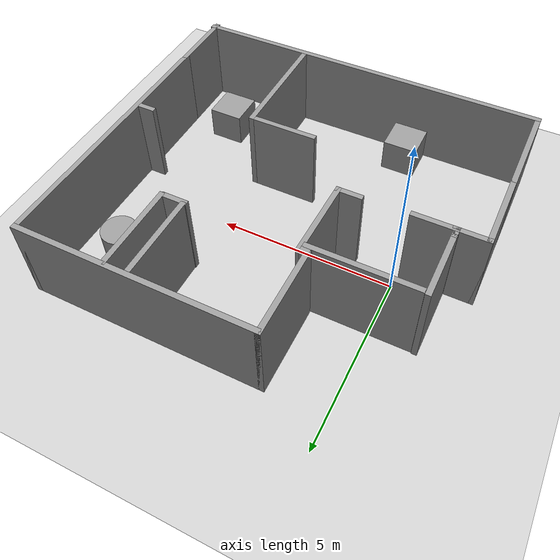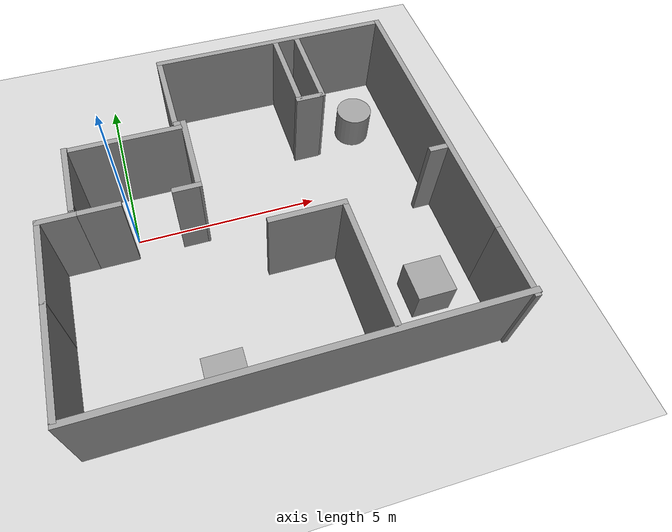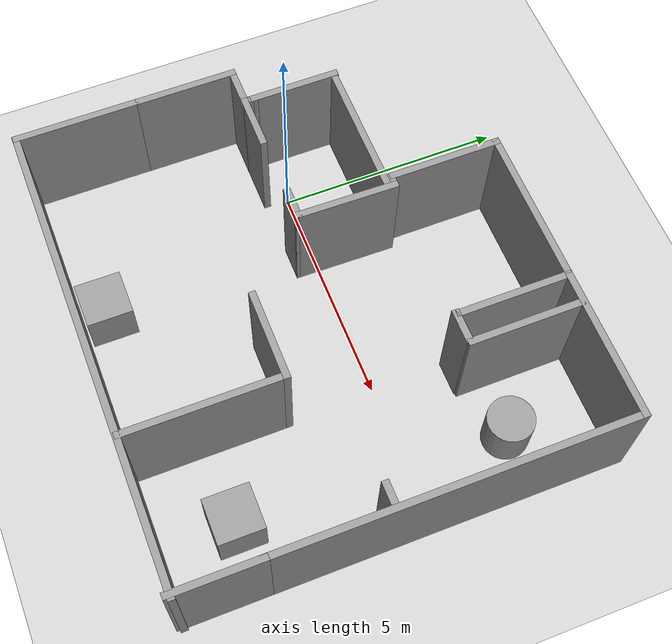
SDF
<sdf version="1.7">
 <world name="default">
  <light name="sun" type="directional">
   <pose>0 0 10 0 -0 0</pose>
   <diffuse>0.8 0.8 0.8 1</diffuse>
   <specular>0.2 0.2 0.2 1</specular>
   <attenuation>
    <range>1000</range>
    <constant>0.9</constant>
    <linear>0.01</linear>
    <quadratic>0.001</quadratic>
   </attenuation>
   <direction>-0.5 0.1 -0.9</direction>
   <spot><inner_angle>0</inner_angle><outer_angle>0</outer_angle><falloff>0</falloff></spot>
  </light>
  <model name="ground_plane">
   <static>1</static>
   <link name="link">
    <collision name="collision">
     <geometry><plane><normal>0 0 1</normal><size>100 100</size></plane></geometry>
     <surface>
      <contact><collide_bitmask>65535</collide_bitmask></contact>
      <friction><ode><mu>100</mu><mu2>50</mu2></ode></friction>
     </surface>
    </collision>
    <visual name="visual">
     <cast_shadows>0</cast_shadows>
     <geometry><plane><normal>0 0 1</normal><size>100 100</size></plane></geometry>
     <material>
      <script><uri>file://media/materials/scripts/gazebo.material</uri><name>Gazebo/Grey</name></script>
     </material>
    </visual>
   </link>
  </model>
  <gravity>0 0 -9.8</gravity>
  <magnetic_field>6e-06 2.3e-05 -4.2e-05</magnetic_field>
  <atmosphere type="adiabatic"/>
  <physics type="ode">
   <max_step_size>0.001</max_step_size>
   <real_time_factor>1</real_time_factor>
   <real_time_update_rate>1000</real_time_update_rate>
  </physics>
  <scene><ambient>0.4 0.4 0.4 1</ambient><background>0.7 0.7 0.7 1</background><shadows>1</shadows></scene>
  <spherical_coordinates>
   <surface_model>EARTH_WGS84</surface_model>
   <latitude_deg>0</latitude_deg>
   <longitude_deg>0</longitude_deg>
   <elevation>0</elevation>
   <heading_deg>0</heading_deg>
  </spherical_coordinates>
  <model name="unit_cylinder">
   <pose>6.96369 2.16284 0.499993 -0 -0 -0</pose>
   <link name="link">
    <inertial>
     <mass>1</mass>
     <inertia><ixx>0.145833</ixx><ixy>0</ixy><ixz>0</ixz><iyy>0.145833</iyy><iyz>0</iyz><izz>0.125</izz></inertia>
    </inertial>
    <collision name="collision">
     <geometry><cylinder><radius>0.5</radius><length>1</length></cylinder></geometry>
    </collision>
    <visual name="visual">
     <geometry><cylinder><radius>0.5</radius><length>1</length></cylinder></geometry>
     <material>
      <script><name>Gazebo/Grey</name><uri>file://media/materials/scripts/gazebo.material</uri></script>
     </material>
    </visual>
   </link>
  </model>
  <model name="unit_box">
   <pose>6.80783 -3.67842 0.499995 0 1e-05 0</pose>
   <link name="link">
    <inertial>
     <mass>1</mass>
     <inertia>
      <ixx>0.166667</ixx>
      <ixy>0</ixy>
      <ixz>0</ixz>
      <iyy>0.166667</iyy>
      <iyz>0</iyz>
      <izz>0.166667</izz>
     </inertia>
    </inertial>
    <collision name="collision"><geometry><box><size>1 1 1</size></box></geometry></collision>
    <visual name="visual">
     <geometry><box><size>1 1 1</size></box></geometry>
     <material>
      <script><name>Gazebo/Grey</name><uri>file://media/materials/scripts/gazebo.material</uri></script>
     </material>
    </visual>
   </link>
  </model>
  <model name="simple2">
   <pose>3.12698 -1.79843 0 0 -0 0</pose>
   <link name="Wall_18">
    <collision name="Wall_18_Collision">
     <geometry><box><size>3 0.15 2.5</size></box></geometry>
     <pose>0 0 1.25 0 -0 0</pose>
    </collision>
    <visual name="Wall_18_Visual">
     <pose>0 0 1.25 0 -0 0</pose>
     <geometry><box><size>3 0.15 2.5</size></box></geometry>
     <material>
      <script><uri>file://media/materials/scripts/gazebo.material</uri><name>Gazebo/Grey</name></script>
      <ambient>1 1 1 1</ambient>
     </material>
     <meta><layer>0</layer></meta>
    </visual>
    <pose>-2.77813 3.35492 0 0 -0 3.14159</pose>
   </link>
   <link name="Wall_29">
    <collision name="Wall_29_Collision">
     <geometry><box><size>1 0.15 2.5</size></box></geometry>
     <pose>0 0 1.25 0 -0 0</pose>
    </collision>
    <visual name="Wall_29_Visual">
     <pose>0 0 1.25 0 -0 0</pose>
     <geometry><box><size>1 0.15 2.5</size></box></geometry>
     <material>
      <script><uri>file://media/materials/scripts/gazebo.material</uri><name>Gazebo/Grey</name></script>
      <ambient>1 1 1 1</ambient>
     </material>
     <meta><layer>0</layer></meta>
    </visual>
    <pose>-4.74568 1.32588 0 0 -0 3.14159</pose>
   </link>
   <link name="Wall_44">
    <collision name="Wall_44_Collision">
     <geometry><box><size>2.25 0.15 2.5</size></box></geometry>
     <pose>0 0 1.25 0 -0 0</pose>
    </collision>
    <visual name="Wall_44_Visual">
     <pose>0 0 1.25 0 -0 0</pose>
     <geometry><box><size>2.25 0.15 2.5</size></box></geometry>
     <material>
      <script><uri>file://media/materials/scripts/gazebo.material</uri><name>Gazebo/Grey</name></script>
      <ambient>1 1 1 1</ambient>
     </material>
     <meta><layer>0</layer></meta>
    </visual>
    <pose>-5.17068 0.275881 0 0 -0 -1.5708</pose>
   </link>
   <link name="Wall_50">
    <collision name="Wall_50_Collision">
     <geometry><box><size>0.25 0.15 2.5</size></box></geometry>
     <pose>0 0 1.25 0 -0 0</pose>
    </collision>
    <visual name="Wall_50_Visual">
     <pose>0 0 1.25 0 -0 0</pose>
     <geometry><box><size>0.25 0.15 2.5</size></box></geometry>
     <material>
      <script><uri>file://media/materials/scripts/gazebo.material</uri><name>Gazebo/Grey</name></script>
      <ambient>1 1 1 1</ambient>
     </material>
     <meta><layer>0</layer></meta>
    </visual>
    <pose>-1.39798 3.49114 0 0 -0 3.14159</pose>
   </link>
   <link name="Wall_53">
    <collision name="Wall_53_Collision">
     <geometry><box><size>10.5 0.15 2.5</size></box></geometry>
     <pose>0 0 1.25 0 -0 0</pose>
    </collision>
    <visual name="Wall_53_Visual">
     <pose>0 0 1.25 0 -0 0</pose>
     <geometry><box><size>10.5 0.15 2.5</size></box></geometry>
     <material>
      <script><uri>file://media/materials/scripts/gazebo.material</uri><name>Gazebo/Grey</name></script>
      <ambient>1 1 1 1</ambient>
     </material>
     <meta><layer>0</layer></meta>
    </visual>
    <pose>0 -3.49114 0 0 -0 0</pose>
   </link>
   <static>1</static>
  </model>
  <model name="unit_box_0">
   <pose>1.4032 -4.6593 0.499995 -1e-05 -0 -0</pose>
   <link name="link">
    <inertial>
     <mass>1</mass>
     <inertia>
      <ixx>0.166667</ixx>
      <ixy>0</ixy>
      <ixz>0</ixz>
      <iyy>0.166667</iyy>
      <iyz>0</iyz>
      <izz>0.166667</izz>
     </inertia>
    </inertial>
    <collision name="collision"><geometry><box><size>1 1 1</size></box></geometry></collision>
    <visual name="visual">
     <geometry><box><size>1 1 1</size></box></geometry>
     <material>
      <script><name>Gazebo/Grey</name><uri>file://media/materials/scripts/gazebo.material</uri></script>
     </material>
    </visual>
   </link>
  </model>
  <model name="111">
   <link name="Wall_10">
    <pose>3.84369 -0.83133 0 0 -0 0</pose>
    <visual name="Wall_10_Visual">
     <pose>0 0 1.25 0 -0 0</pose>
     <geometry><box><size>0.5 0.15 2.5</size></box></geometry>
     <material>
      <script><uri>file://media/materials/scripts/gazebo.material</uri><name>Gazebo/Grey</name></script>
      <ambient>1 1 1 1</ambient>
      <shader type="pixel"/>
     </material>
     <meta><layer>0</layer></meta>
    </visual>
    <collision name="Wall_10_Collision">
     <pose>0 0 1.25 0 -0 0</pose>
     <geometry><box><size>0.5 0.15 2.5</size></box></geometry>
     <surface>
      <friction>
       <ode><mu>1</mu><mu2>1</mu2><fdir1>0 0 0</fdir1><slip1>0</slip1><slip2>0</slip2></ode>
       <torsional>
        <coefficient>1</coefficient>
        <patch_radius>0</patch_radius>
        <surface_radius>0</surface_radius>
        <use_patch_radius>1</use_patch_radius>
        <ode><slip>0</slip></ode>
       </torsional>
      </friction>
      <bounce><restitution_coefficient>0</restitution_coefficient><threshold>1e+06</threshold></bounce>
      <contact>
       <collide_without_contact>0</collide_without_contact>
       <collide_without_contact_bitmask>1</collide_without_contact_bitmask>
       <collide_bitmask>1</collide_bitmask>
       <ode>
        <soft_cfm>0</soft_cfm>
        <soft_erp>0.2</soft_erp>
        <kp>1e+13</kp>
        <kd>1</kd>
        <max_vel>0.01</max_vel>
        <min_depth>0</min_depth>
       </ode>
       <bullet>
        <split_impulse>1</split_impulse>
        <split_impulse_penetration_threshold>-0.01</split_impulse_penetration_threshold>
        <soft_cfm>0</soft_cfm>
        <soft_erp>0.2</soft_erp>
        <kp>1e+13</kp>
        <kd>1</kd>
       </bullet>
      </contact>
     </surface>
    </collision>
   </link>
   <static>1</static>
   <pose>4.09369 -0.140284 0 0 -0 0</pose>
  </model>
  <model name="simple2_0">
   <link name="Wall_12">
    <pose>-1.95 -0.226148 0 0 0 -1.5708</pose>
    <visual name="Wall_12_Visual">
     <pose>0 0 1.25 0 -0 0</pose>
     <geometry><box><size>0.25 0.15 2.5</size></box></geometry>
     <material>
      <script><uri>file://media/materials/scripts/gazebo.material</uri><name>Gazebo/Grey</name></script>
      <ambient>1 1 1 1</ambient>
      <shader type="pixel"/>
     </material>
     <meta><layer>0</layer></meta>
    </visual>
    <collision name="Wall_12_Collision">
     <pose>0 0 1.25 0 -0 0</pose>
     <geometry><box><size>0.25 0.15 2.5</size></box></geometry>
     <surface>
      <friction>
       <ode><mu>1</mu><mu2>1</mu2><fdir1>0 0 0</fdir1><slip1>0</slip1><slip2>0</slip2></ode>
       <torsional>
        <coefficient>1</coefficient>
        <patch_radius>0</patch_radius>
        <surface_radius>0</surface_radius>
        <use_patch_radius>1</use_patch_radius>
        <ode><slip>0</slip></ode>
       </torsional>
      </friction>
      <bounce><restitution_coefficient>0</restitution_coefficient><threshold>1e+06</threshold></bounce>
      <contact>
       <collide_without_contact>0</collide_without_contact>
       <collide_without_contact_bitmask>1</collide_without_contact_bitmask>
       <collide_bitmask>1</collide_bitmask>
       <ode>
        <soft_cfm>0</soft_cfm>
        <soft_erp>0.2</soft_erp>
        <kp>1e+13</kp>
        <kd>1</kd>
        <max_vel>0.01</max_vel>
        <min_depth>0</min_depth>
       </ode>
       <bullet>
        <split_impulse>1</split_impulse>
        <split_impulse_penetration_threshold>-0.01</split_impulse_penetration_threshold>
        <soft_cfm>0</soft_cfm>
        <soft_erp>0.2</soft_erp>
        <kp>1e+13</kp>
        <kd>1</kd>
       </bullet>
      </contact>
     </surface>
    </collision>
   </link>
   <link name="Wall_13">
    <pose>-1.95 -0.326148 0 0 0 -1.5708</pose>
    <visual name="Wall_13_Visual">
     <pose>0 0 1.25 0 -0 0</pose>
     <geometry><box><size>0.25 0.15 2.5</size></box></geometry>
     <material>
      <script><uri>file://media/materials/scripts/gazebo.material</uri><name>Gazebo/Grey</name></script>
      <ambient>1 1 1 1</ambient>
      <shader type="pixel"/>
     </material>
     <meta><layer>0</layer></meta>
    </visual>
    <collision name="Wall_13_Collision">
     <pose>0 0 1.25 0 -0 0</pose>
     <geometry><box><size>0.25 0.15 2.5</size></box></geometry>
     <surface>
      <friction>
       <ode><mu>1</mu><mu2>1</mu2><fdir1>0 0 0</fdir1><slip1>0</slip1><slip2>0</slip2></ode>
       <torsional>
        <coefficient>1</coefficient>
        <patch_radius>0</patch_radius>
        <surface_radius>0</surface_radius>
        <use_patch_radius>1</use_patch_radius>
        <ode><slip>0</slip></ode>
       </torsional>
      </friction>
      <bounce><restitution_coefficient>0</restitution_coefficient><threshold>1e+06</threshold></bounce>
      <contact>
       <collide_without_contact>0</collide_without_contact>
       <collide_without_contact_bitmask>1</collide_without_contact_bitmask>
       <collide_bitmask>1</collide_bitmask>
       <ode>
        <soft_cfm>0</soft_cfm>
        <soft_erp>0.2</soft_erp>
        <kp>1e+13</kp>
        <kd>1</kd>
        <max_vel>0.01</max_vel>
        <min_depth>0</min_depth>
       </ode>
       <bullet>
        <split_impulse>1</split_impulse>
        <split_impulse_penetration_threshold>-0.01</split_impulse_penetration_threshold>
        <soft_cfm>0</soft_cfm>
        <soft_erp>0.2</soft_erp>
        <kp>1e+13</kp>
        <kd>1</kd>
       </bullet>
      </contact>
     </surface>
    </collision>
   </link>
   <link name="Wall_14">
    <pose>-1.4 -0.376148 0 0 -0 0</pose>
    <visual name="Wall_14_Visual">
     <pose>0 0 1.25 0 -0 0</pose>
     <geometry><box><size>1.25 0.15 2.5</size></box></geometry>
     <material>
      <script><uri>file://media/materials/scripts/gazebo.material</uri><name>Gazebo/Grey</name></script>
      <ambient>1 1 1 1</ambient>
      <shader type="pixel"/>
     </material>
     <meta><layer>0</layer></meta>
    </visual>
    <collision name="Wall_14_Collision">
     <pose>0 0 1.25 0 -0 0</pose>
     <geometry><box><size>1.25 0.15 2.5</size></box></geometry>
     <surface>
      <friction>
       <ode><mu>1</mu><mu2>1</mu2><fdir1>0 0 0</fdir1><slip1>0</slip1><slip2>0</slip2></ode>
       <torsional>
        <coefficient>1</coefficient>
        <patch_radius>0</patch_radius>
        <surface_radius>0</surface_radius>
        <use_patch_radius>1</use_patch_radius>
        <ode><slip>0</slip></ode>
       </torsional>
      </friction>
      <bounce><restitution_coefficient>0</restitution_coefficient><threshold>1e+06</threshold></bounce>
      <contact>
       <collide_without_contact>0</collide_without_contact>
       <collide_without_contact_bitmask>1</collide_without_contact_bitmask>
       <collide_bitmask>1</collide_bitmask>
       <ode>
        <soft_cfm>0</soft_cfm>
        <soft_erp>0.2</soft_erp>
        <kp>1e+13</kp>
        <kd>1</kd>
        <max_vel>0.01</max_vel>
        <min_depth>0</min_depth>
       </ode>
       <bullet>
        <split_impulse>1</split_impulse>
        <split_impulse_penetration_threshold>-0.01</split_impulse_penetration_threshold>
        <soft_cfm>0</soft_cfm>
        <soft_erp>0.2</soft_erp>
        <kp>1e+13</kp>
        <kd>1</kd>
       </bullet>
      </contact>
     </surface>
    </collision>
   </link>
   <link name="Wall_27">
    <pose>-2.762 -3.88385 0 0 -0 1.5708</pose>
    <visual name="Wall_27_Visual">
     <pose>0 0 1.25 0 -0 0</pose>
     <geometry><box><size>2.75 0.15 2.5</size></box></geometry>
     <material>
      <script><uri>file://media/materials/scripts/gazebo.material</uri><name>Gazebo/Grey</name></script>
      <ambient>1 1 1 1</ambient>
      <shader type="pixel"/>
     </material>
     <meta><layer>0</layer></meta>
    </visual>
    <collision name="Wall_27_Collision">
     <pose>0 0 1.25 0 -0 0</pose>
     <geometry><box><size>2.75 0.15 2.5</size></box></geometry>
     <surface>
      <friction>
       <ode><mu>1</mu><mu2>1</mu2><fdir1>0 0 0</fdir1><slip1>0</slip1><slip2>0</slip2></ode>
       <torsional>
        <coefficient>1</coefficient>
        <patch_radius>0</patch_radius>
        <surface_radius>0</surface_radius>
        <use_patch_radius>1</use_patch_radius>
        <ode><slip>0</slip></ode>
       </torsional>
      </friction>
      <bounce><restitution_coefficient>0</restitution_coefficient><threshold>1e+06</threshold></bounce>
      <contact>
       <collide_without_contact>0</collide_without_contact>
       <collide_without_contact_bitmask>1</collide_without_contact_bitmask>
       <collide_bitmask>1</collide_bitmask>
       <ode>
        <soft_cfm>0</soft_cfm>
        <soft_erp>0.2</soft_erp>
        <kp>1e+13</kp>
        <kd>1</kd>
        <max_vel>0.01</max_vel>
        <min_depth>0</min_depth>
       </ode>
       <bullet>
        <split_impulse>1</split_impulse>
        <split_impulse_penetration_threshold>-0.01</split_impulse_penetration_threshold>
        <soft_cfm>0</soft_cfm>
        <soft_erp>0.2</soft_erp>
        <kp>1e+13</kp>
        <kd>1</kd>
       </bullet>
      </contact>
     </surface>
    </collision>
   </link>
   <link name="Wall_29">
    <pose>4.358 -3.48885 0 0 -0 1.5708</pose>
    <visual name="Wall_29_Visual">
     <pose>0 0 1.25 0 -0 0</pose>
     <geometry><box><size>3.5 0.15 2.5</size></box></geometry>
     <material>
      <script><uri>file://media/materials/scripts/gazebo.material</uri><name>Gazebo/Grey</name></script>
      <ambient>1 1 1 1</ambient>
      <shader type="pixel"/>
     </material>
     <meta><layer>0</layer></meta>
    </visual>
    <collision name="Wall_29_Collision">
     <pose>0 0 1.25 0 -0 0</pose>
     <geometry><box><size>3.5 0.15 2.5</size></box></geometry>
     <surface>
      <friction>
       <ode><mu>1</mu><mu2>1</mu2><fdir1>0 0 0</fdir1><slip1>0</slip1><slip2>0</slip2></ode>
       <torsional>
        <coefficient>1</coefficient>
        <patch_radius>0</patch_radius>
        <surface_radius>0</surface_radius>
        <use_patch_radius>1</use_patch_radius>
        <ode><slip>0</slip></ode>
       </torsional>
      </friction>
      <bounce><restitution_coefficient>0</restitution_coefficient><threshold>1e+06</threshold></bounce>
      <contact>
       <collide_without_contact>0</collide_without_contact>
       <collide_without_contact_bitmask>1</collide_without_contact_bitmask>
       <collide_bitmask>1</collide_bitmask>
       <ode>
        <soft_cfm>0</soft_cfm>
        <soft_erp>0.2</soft_erp>
        <kp>1e+13</kp>
        <kd>1</kd>
        <max_vel>0.01</max_vel>
        <min_depth>0</min_depth>
       </ode>
       <bullet>
        <split_impulse>1</split_impulse>
        <split_impulse_penetration_threshold>-0.01</split_impulse_penetration_threshold>
        <soft_cfm>0</soft_cfm>
        <soft_erp>0.2</soft_erp>
        <kp>1e+13</kp>
        <kd>1</kd>
       </bullet>
      </contact>
     </surface>
    </collision>
   </link>
   <link name="Wall_30">
    <pose>3.433 -1.81385 0 0 -0 3.14159</pose>
    <visual name="Wall_30_Visual">
     <pose>0 0 1.25 0 -0 0</pose>
     <geometry><box><size>2 0.15 2.5</size></box></geometry>
     <material>
      <script><uri>file://media/materials/scripts/gazebo.material</uri><name>Gazebo/Grey</name></script>
      <ambient>1 1 1 1</ambient>
      <shader type="pixel"/>
     </material>
     <meta><layer>0</layer></meta>
    </visual>
    <collision name="Wall_30_Collision">
     <pose>0 0 1.25 0 -0 0</pose>
     <geometry><box><size>2 0.15 2.5</size></box></geometry>
     <surface>
      <friction>
       <ode><mu>1</mu><mu2>1</mu2><fdir1>0 0 0</fdir1><slip1>0</slip1><slip2>0</slip2></ode>
       <torsional>
        <coefficient>1</coefficient>
        <patch_radius>0</patch_radius>
        <surface_radius>0</surface_radius>
        <use_patch_radius>1</use_patch_radius>
        <ode><slip>0</slip></ode>
       </torsional>
      </friction>
      <bounce><restitution_coefficient>0</restitution_coefficient><threshold>1e+06</threshold></bounce>
      <contact>
       <collide_without_contact>0</collide_without_contact>
       <collide_without_contact_bitmask>1</collide_without_contact_bitmask>
       <collide_bitmask>1</collide_bitmask>
       <ode>
        <soft_cfm>0</soft_cfm>
        <soft_erp>0.2</soft_erp>
        <kp>1e+13</kp>
        <kd>1</kd>
        <max_vel>0.01</max_vel>
        <min_depth>0</min_depth>
       </ode>
       <bullet>
        <split_impulse>1</split_impulse>
        <split_impulse_penetration_threshold>-0.01</split_impulse_penetration_threshold>
        <soft_cfm>0</soft_cfm>
        <soft_erp>0.2</soft_erp>
        <kp>1e+13</kp>
        <kd>1</kd>
       </bullet>
      </contact>
     </surface>
    </collision>
   </link>
   <link name="Wall_33">
    <pose>4.618 1.74615 0 0 -0 3.14159</pose>
    <visual name="Wall_33_Visual">
     <pose>0 0 1.25 0 -0 0</pose>
     <geometry><box><size>0.75 0.15 2.5</size></box></geometry>
     <material>
      <script><uri>file://media/materials/scripts/gazebo.material</uri><name>Gazebo/Grey</name></script>
      <ambient>1 1 1 1</ambient>
      <shader type="pixel"/>
     </material>
     <meta><layer>0</layer></meta>
    </visual>
    <collision name="Wall_33_Collision">
     <pose>0 0 1.25 0 -0 0</pose>
     <geometry><box><size>0.75 0.15 2.5</size></box></geometry>
     <surface>
      <friction>
       <ode><mu>1</mu><mu2>1</mu2><fdir1>0 0 0</fdir1><slip1>0</slip1><slip2>0</slip2></ode>
       <torsional>
        <coefficient>1</coefficient>
        <patch_radius>0</patch_radius>
        <surface_radius>0</surface_radius>
        <use_patch_radius>1</use_patch_radius>
        <ode><slip>0</slip></ode>
       </torsional>
      </friction>
      <bounce><restitution_coefficient>0</restitution_coefficient><threshold>1e+06</threshold></bounce>
      <contact>
       <collide_without_contact>0</collide_without_contact>
       <collide_without_contact_bitmask>1</collide_without_contact_bitmask>
       <collide_bitmask>1</collide_bitmask>
       <ode>
        <soft_cfm>0</soft_cfm>
        <soft_erp>0.2</soft_erp>
        <kp>1e+13</kp>
        <kd>1</kd>
        <max_vel>0.01</max_vel>
        <min_depth>0</min_depth>
       </ode>
       <bullet>
        <split_impulse>1</split_impulse>
        <split_impulse_penetration_threshold>-0.01</split_impulse_penetration_threshold>
        <soft_cfm>0</soft_cfm>
        <soft_erp>0.2</soft_erp>
        <kp>1e+13</kp>
        <kd>1</kd>
       </bullet>
      </contact>
     </surface>
    </collision>
   </link>
   <link name="Wall_36">
    <pose>0.815218 -0.333539 0 0 -0 3.14159</pose>
    <visual name="Wall_36_Visual">
     <pose>0 0 1.25 0 -0 0</pose>
     <geometry><box><size>0.75 0.15 2.5</size></box></geometry>
     <material>
      <script><uri>file://media/materials/scripts/gazebo.material</uri><name>Gazebo/Grey</name></script>
      <ambient>1 1 1 1</ambient>
      <shader type="pixel"/>
     </material>
     <meta><layer>0</layer></meta>
    </visual>
    <collision name="Wall_36_Collision">
     <pose>0 0 1.25 0 -0 0</pose>
     <geometry><box><size>0.75 0.15 2.5</size></box></geometry>
     <surface>
      <friction>
       <ode><mu>1</mu><mu2>1</mu2><fdir1>0 0 0</fdir1><slip1>0</slip1><slip2>0</slip2></ode>
       <torsional>
        <coefficient>1</coefficient>
        <patch_radius>0</patch_radius>
        <surface_radius>0</surface_radius>
        <use_patch_radius>1</use_patch_radius>
        <ode><slip>0</slip></ode>
       </torsional>
      </friction>
      <bounce><restitution_coefficient>0</restitution_coefficient><threshold>1e+06</threshold></bounce>
      <contact>
       <collide_without_contact>0</collide_without_contact>
       <collide_without_contact_bitmask>1</collide_without_contact_bitmask>
       <collide_bitmask>1</collide_bitmask>
       <ode>
        <soft_cfm>0</soft_cfm>
        <soft_erp>0.2</soft_erp>
        <kp>1e+13</kp>
        <kd>1</kd>
        <max_vel>0.01</max_vel>
        <min_depth>0</min_depth>
       </ode>
       <bullet>
        <split_impulse>1</split_impulse>
        <split_impulse_penetration_threshold>-0.01</split_impulse_penetration_threshold>
        <soft_cfm>0</soft_cfm>
        <soft_erp>0.2</soft_erp>
        <kp>1e+13</kp>
        <kd>1</kd>
       </bullet>
      </contact>
     </surface>
    </collision>
   </link>
   <link name="Wall_5">
    <pose>1.13261 0.725157 0 0 0 -1.58722</pose>
    <visual name="Wall_5_Visual">
     <pose>0 0 1.25 0 -0 0</pose>
     <geometry><box><size>2.26746 0.15 2.5</size></box></geometry>
     <material>
      <script><uri>file://media/materials/scripts/gazebo.material</uri><name>Gazebo/Grey</name></script>
      <ambient>1 1 1 1</ambient>
      <shader type="pixel"/>
     </material>
     <meta><layer>0</layer></meta>
    </visual>
    <collision name="Wall_5_Collision">
     <pose>0 0 1.25 0 -0 0</pose>
     <geometry><box><size>2.26746 0.15 2.5</size></box></geometry>
     <surface>
      <friction>
       <ode><mu>1</mu><mu2>1</mu2><fdir1>0 0 0</fdir1><slip1>0</slip1><slip2>0</slip2></ode>
       <torsional>
        <coefficient>1</coefficient>
        <patch_radius>0</patch_radius>
        <surface_radius>0</surface_radius>
        <use_patch_radius>1</use_patch_radius>
        <ode><slip>0</slip></ode>
       </torsional>
      </friction>
      <bounce><restitution_coefficient>0</restitution_coefficient><threshold>1e+06</threshold></bounce>
      <contact>
       <collide_without_contact>0</collide_without_contact>
       <collide_without_contact_bitmask>1</collide_without_contact_bitmask>
       <collide_bitmask>1</collide_bitmask>
       <ode>
        <soft_cfm>0</soft_cfm>
        <soft_erp>0.2</soft_erp>
        <kp>1e+13</kp>
        <kd>1</kd>
        <max_vel>0.01</max_vel>
        <min_depth>0</min_depth>
       </ode>
       <bullet>
        <split_impulse>1</split_impulse>
        <split_impulse_penetration_threshold>-0.01</split_impulse_penetration_threshold>
        <soft_cfm>0</soft_cfm>
        <soft_erp>0.2</soft_erp>
        <kp>1e+13</kp>
        <kd>1</kd>
       </bullet>
      </contact>
     </surface>
    </collision>
   </link>
   <link name="Wall_8">
    <pose>-1.95 0.748852 0 0 0 -1.5708</pose>
    <visual name="Wall_8_Visual">
     <pose>0 0 1.25 0 -0 0</pose>
     <geometry><box><size>2 0.15 2.5</size></box></geometry>
     <material>
      <script><uri>file://media/materials/scripts/gazebo.material</uri><name>Gazebo/Grey</name></script>
      <ambient>1 1 1 1</ambient>
      <shader type="pixel"/>
     </material>
     <meta><layer>0</layer></meta>
    </visual>
    <collision name="Wall_8_Collision">
     <pose>0 0 1.25 0 -0 0</pose>
     <geometry><box><size>2 0.15 2.5</size></box></geometry>
     <surface>
      <friction>
       <ode><mu>1</mu><mu2>1</mu2><fdir1>0 0 0</fdir1><slip1>0</slip1><slip2>0</slip2></ode>
       <torsional>
        <coefficient>1</coefficient>
        <patch_radius>0</patch_radius>
        <surface_radius>0</surface_radius>
        <use_patch_radius>1</use_patch_radius>
        <ode><slip>0</slip></ode>
       </torsional>
      </friction>
      <bounce><restitution_coefficient>0</restitution_coefficient><threshold>1e+06</threshold></bounce>
      <contact>
       <collide_without_contact>0</collide_without_contact>
       <collide_without_contact_bitmask>1</collide_without_contact_bitmask>
       <collide_bitmask>1</collide_bitmask>
       <ode>
        <soft_cfm>0</soft_cfm>
        <soft_erp>0.2</soft_erp>
        <kp>1e+13</kp>
        <kd>1</kd>
        <max_vel>0.01</max_vel>
        <min_depth>0</min_depth>
       </ode>
       <bullet>
        <split_impulse>1</split_impulse>
        <split_impulse_penetration_threshold>-0.01</split_impulse_penetration_threshold>
        <soft_cfm>0</soft_cfm>
        <soft_erp>0.2</soft_erp>
        <kp>1e+13</kp>
        <kd>1</kd>
       </bullet>
      </contact>
     </surface>
    </collision>
   </link>
   <link name="Wall_9">
    <pose>-1.95 -0.226148 0 0 0 -1.5708</pose>
    <visual name="Wall_9_Visual">
     <pose>0 0 1.25 0 -0 0</pose>
     <geometry><box><size>0.25 0.15 2.5</size></box></geometry>
     <material>
      <script><uri>file://media/materials/scripts/gazebo.material</uri><name>Gazebo/Grey</name></script>
      <ambient>1 1 1 1</ambient>
      <shader type="pixel"/>
     </material>
     <meta><layer>0</layer></meta>
    </visual>
    <collision name="Wall_9_Collision">
     <pose>0 0 1.25 0 -0 0</pose>
     <geometry><box><size>0.25 0.15 2.5</size></box></geometry>
     <surface>
      <friction>
       <ode><mu>1</mu><mu2>1</mu2><fdir1>0 0 0</fdir1><slip1>0</slip1><slip2>0</slip2></ode>
       <torsional>
        <coefficient>1</coefficient>
        <patch_radius>0</patch_radius>
        <surface_radius>0</surface_radius>
        <use_patch_radius>1</use_patch_radius>
        <ode><slip>0</slip></ode>
       </torsional>
      </friction>
      <bounce><restitution_coefficient>0</restitution_coefficient><threshold>1e+06</threshold></bounce>
      <contact>
       <collide_without_contact>0</collide_without_contact>
       <collide_without_contact_bitmask>1</collide_without_contact_bitmask>
       <collide_bitmask>1</collide_bitmask>
       <ode>
        <soft_cfm>0</soft_cfm>
        <soft_erp>0.2</soft_erp>
        <kp>1e+13</kp>
        <kd>1</kd>
        <max_vel>0.01</max_vel>
        <min_depth>0</min_depth>
       </ode>
       <bullet>
        <split_impulse>1</split_impulse>
        <split_impulse_penetration_threshold>-0.01</split_impulse_penetration_threshold>
        <soft_cfm>0</soft_cfm>
        <soft_erp>0.2</soft_erp>
        <kp>1e+13</kp>
        <kd>1</kd>
       </bullet>
      </contact>
     </surface>
    </collision>
   </link>
   <static>1</static>
   <pose>0.71535 -0.09398 0 0 -0 0</pose>
  </model>
  <model name="Uwanshan">
   <pose>4.1625 -0.635 0 0 -0 0</pose>
   <link name="Wall_10">
    <collision name="Wall_10_Collision">
     <geometry><box><size>7.75 0.15 2.5</size></box></geometry>
     <pose>0 0 1.25 0 -0 0</pose>
    </collision>
    <visual name="Wall_10_Visual">
     <pose>0 0 1.25 0 -0 0</pose>
     <geometry><box><size>7.75 0.15 2.5</size></box></geometry>
     <material>
      <script><uri>file://media/materials/scripts/gazebo.material</uri><name>Gazebo/Grey</name></script>
      <ambient>1 1 1 1</ambient>
     </material>
     <meta><layer>0</layer></meta>
    </visual>
    <pose>4.0875 0.925 0 0 -0 -1.5708</pose>
   </link>
   <link name="Wall_12">
    <collision name="Wall_12_Collision">
     <geometry><box><size>2 0.15 2.5</size></box></geometry>
     <pose>0 0 1.25 0 -0 0</pose>
    </collision>
    <visual name="Wall_12_Visual">
     <pose>0 0 1.25 0 -0 0</pose>
     <geometry><box><size>2 0.15 2.5</size></box></geometry>
     <material>
      <script><uri>file://media/materials/scripts/gazebo.material</uri><name>Gazebo/Grey</name></script>
      <ambient>1 1 1 1</ambient>
     </material>
     <meta><layer>0</layer></meta>
    </visual>
    <pose>4.0875 -3.8 0 0 -0 -1.5708</pose>
   </link>
   <link name="Wall_14">
    <collision name="Wall_14_Collision">
     <geometry><box><size>2.5 0.15 2.5</size></box></geometry>
     <pose>0 0 1.25 0 -0 0</pose>
    </collision>
    <visual name="Wall_14_Visual">
     <pose>0 0 1.25 0 -0 0</pose>
     <geometry><box><size>2.5 0.15 2.5</size></box></geometry>
     <material>
      <script><uri>file://media/materials/scripts/gazebo.material</uri><name>Gazebo/Grey</name></script>
      <ambient>1 1 1 1</ambient>
     </material>
     <meta><layer>0</layer></meta>
    </visual>
    <pose>0.891551 3.53112 0 0 -0 -1.5708</pose>
   </link>
   <link name="Wall_16">
    <collision name="Wall_16_Collision">
     <geometry><box><size>2.5 0.15 2.5</size></box></geometry>
     <pose>0 0 1.25 0 -0 0</pose>
    </collision>
    <visual name="Wall_16_Visual">
     <pose>0 0 1.25 0 -0 0</pose>
     <geometry><box><size>2.5 0.15 2.5</size></box></geometry>
     <material>
      <script><uri>file://media/materials/scripts/gazebo.material</uri><name>Gazebo/Grey</name></script>
      <ambient>1 1 1 1</ambient>
     </material>
     <meta><layer>0</layer></meta>
    </visual>
    <pose>1.53921 3.48486 0 0 -0 -1.5708</pose>
   </link>
   <link name="Wall_7">
    <collision name="Wall_7_Collision">
     <geometry><box><size>2.5 0.15 2.5</size></box></geometry>
     <pose>0 0 1.25 0 -0 0</pose>
    </collision>
    <visual name="Wall_7_Visual">
     <pose>0 0 1.25 0 -0 0</pose>
     <geometry><box><size>2.5 0.15 2.5</size></box></geometry>
     <material>
      <script><uri>file://media/materials/scripts/gazebo.material</uri><name>Gazebo/Grey</name></script>
      <ambient>1 1 1 1</ambient>
     </material>
     <meta><layer>0</layer></meta>
    </visual>
    <pose>-2.5125 3.55 0 0 -0 1.5708</pose>
   </link>
   <link name="Wall_9">
    <collision name="Wall_9_Collision">
     <geometry><box><size>6.75 0.15 2.5</size></box></geometry>
     <pose>0 0 1.25 0 -0 0</pose>
    </collision>
    <visual name="Wall_9_Visual">
     <pose>0 0 1.25 0 -0 0</pose>
     <geometry><box><size>6.75 0.15 2.5</size></box></geometry>
     <material>
      <script><uri>file://media/materials/scripts/gazebo.material</uri><name>Gazebo/Grey</name></script>
      <ambient>1 1 1 1</ambient>
     </material>
     <meta><layer>0</layer></meta>
    </visual>
    <pose>0.787499 4.725 0 0 -0 0</pose>
   </link>
   <static>1</static>
  </model>
 </world>
</sdf>
